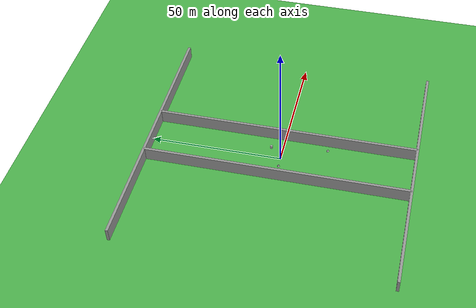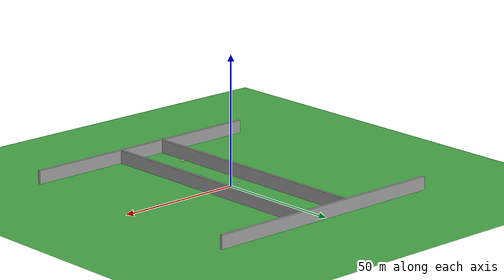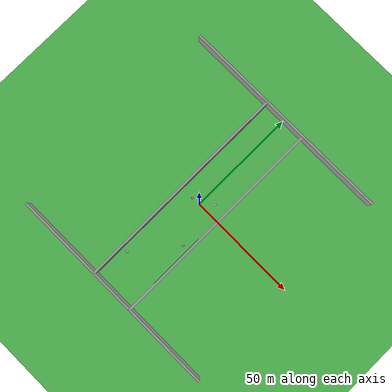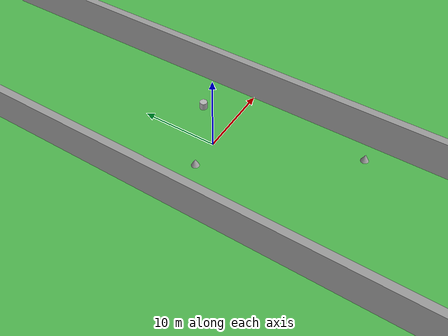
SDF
<sdf version="1.10">
 <world name="empty">
  <physics name="1ms" type="ignored">
   <max_step_size>0.001</max_step_size>
   <real_time_factor>1</real_time_factor>
   <real_time_update_rate>1000</real_time_update_rate>
  </physics>
  <plugin name="gz::sim::systems::Physics" filename="gz-sim-physics-system"/>
  <plugin name="gz::sim::systems::UserCommands" filename="gz-sim-user-commands-system"/>
  <plugin name="gz::sim::systems::SceneBroadcaster" filename="gz-sim-scene-broadcaster-system"/>
  <plugin name="gz::sim::systems::Contact" filename="gz-sim-contact-system"/>
  <plugin name="gz::sim::systems::Sensors" filename="gz-sim-sensors-system">
   <render_engine>ogre2</render_engine>
  </plugin>
  <gravity>0 0 -9.8000000000000007</gravity>
  <magnetic_field>5.5644999999999998e-06 2.2875799999999999e-05 -4.2388400000000002e-05</magnetic_field>
  <atmosphere type="adiabatic"/>
  <scene>
   <ambient>0.400000006 0.400000006 0.400000006 1</ambient>
   <background>0.699999988 0.699999988 0.699999988 1</background>
   <shadows>true</shadows>
  </scene>
  <model name="ground_plane">
   <static>true</static>
   <link name="link">
    <collision name="collision">
     <geometry><plane><normal>0 0 1</normal><size>100 100</size></plane></geometry>
    </collision>
    <visual name="visual">
     <geometry><plane><normal>0 0 1</normal><size>100 100</size></plane></geometry>
     <material>
      <ambient>0.200000003 0.5 0.200000003 1</ambient>
      <diffuse>0.300000012 0.699999988 0.300000012 1</diffuse>
      <specular>0.100000001 0.200000003 0.100000001 1</specular>
     </material>
    </visual>
    <inertial>
     <mass>1</mass>
     <inertia><ixx>1</ixx><ixy>0</ixy><ixz>0</ixz><iyy>1</iyy><iyz>0</iyz><izz>1</izz></inertia>
    </inertial>
   </link>
  </model>
  <model name="north_wall">
   <static>true</static>
   <link name="link">
    <collision name="collision"><geometry><box><size>100 1 8</size></box></geometry></collision>
    <visual name="visual">
     <geometry><box><size>100 1 8</size></box></geometry>
     <material>
      <ambient>0.600000024 0.600000024 0.600000024 1</ambient>
      <diffuse>0.600000024 0.600000024 0.600000024 1</diffuse>
     </material>
    </visual>
    <inertial>
     <mass>1</mass>
     <inertia><ixx>1</ixx><ixy>0</ixy><ixz>0</ixz><iyy>1</iyy><iyz>0</iyz><izz>1</izz></inertia>
    </inertial>
   </link>
   <pose>0 50 1 0 0 0</pose>
  </model>
  <model name="south_wall">
   <static>true</static>
   <link name="link">
    <collision name="collision"><geometry><box><size>100 1 8</size></box></geometry></collision>
    <visual name="visual">
     <geometry><box><size>100 1 8</size></box></geometry>
     <material>
      <ambient>0.600000024 0.600000024 0.600000024 1</ambient>
      <diffuse>0.600000024 0.600000024 0.600000024 1</diffuse>
     </material>
    </visual>
    <inertial>
     <mass>1</mass>
     <inertia><ixx>1</ixx><ixy>0</ixy><ixz>0</ixz><iyy>1</iyy><iyz>0</iyz><izz>1</izz></inertia>
    </inertial>
   </link>
   <pose>0 -50 1 0 0 0</pose>
  </model>
  <model name="east_wall">
   <static>true</static>
   <link name="link">
    <collision name="collision"><geometry><box><size>1 100 8</size></box></geometry></collision>
    <visual name="visual">
     <geometry><box><size>1 100 8</size></box></geometry>
     <material>
      <ambient>0.600000024 0.600000024 0.600000024 1</ambient>
      <diffuse>0.600000024 0.600000024 0.600000024 1</diffuse>
     </material>
    </visual>
    <inertial>
     <mass>1</mass>
     <inertia><ixx>1</ixx><ixy>0</ixy><ixz>0</ixz><iyy>1</iyy><iyz>0</iyz><izz>1</izz></inertia>
    </inertial>
   </link>
   <pose>10.560626029968262 0 1 0 0 0</pose>
  </model>
  <model name="west_wall">
   <static>true</static>
   <link name="link">
    <collision name="collision"><geometry><box><size>1 100 8</size></box></geometry></collision>
    <visual name="visual">
     <geometry><box><size>1 100 8</size></box></geometry>
     <material>
      <ambient>0.600000024 0.600000024 0.600000024 1</ambient>
      <diffuse>0.600000024 0.600000024 0.600000024 1</diffuse>
     </material>
    </visual>
    <inertial>
     <mass>1</mass>
     <inertia><ixx>1</ixx><ixy>0</ixy><ixz>0</ixz><iyy>1</iyy><iyz>0</iyz><izz>1</izz></inertia>
    </inertial>
   </link>
   <pose>-10.047396659851074 0 1 0 0 0</pose>
  </model>
  <model name="cylinder">
   <pose>4.891591573101489 4.5621575394666714 0.49999942638036005 2.5550699908049808e-19 -2.2824476174025148e-19 1.3530341368986673e-20</pose>
   <link name="cylinder_link">
    <inertial>
     <inertia>
      <ixx>0.14580000000000001</ixx>
      <ixy>0</ixy>
      <ixz>0</ixz>
      <iyy>0.14580000000000001</iyy>
      <iyz>0</iyz>
      <izz>0.125</izz>
     </inertia>
     <mass>1</mass>
    </inertial>
    <collision name="cylinder_collision">
     <geometry><cylinder><radius>0.5</radius><length>1</length></cylinder></geometry>
    </collision>
    <visual name="cylinder_visual">
     <geometry><cylinder><radius>0.5</radius><length>1</length></cylinder></geometry>
     <material>
      <ambient>0.300000012 0.300000012 0.300000012 1</ambient>
      <diffuse>0.699999988 0.699999988 0.699999988 1</diffuse>
      <specular>1 1 1 1</specular>
     </material>
    </visual>
   </link>
   <static>false</static>
  </model>
  <model name="cone">
   <pose>-3.9665346202055169 -0.10561042626538011 0.49999999993296756 5.254112337112289e-17 -7.7132841035481852e-10 1.1756787404075212e-22</pose>
   <link name="cone_link">
    <inertial>
     <inertia>
      <ixx>0.074999999999999997</ixx>
      <ixy>0</ixy>
      <ixz>0</ixz>
      <iyy>0.074999999999999997</iyy>
      <iyz>0</iyz>
      <izz>0.074999999999999997</izz>
     </inertia>
     <mass>1</mass>
    </inertial>
    <collision name="cone_collision">
     <geometry><cone><radius>0.5</radius><length>1</length></cone></geometry>
    </collision>
    <visual name="cone_visual">
     <geometry><cone><radius>0.5</radius><length>1</length></cone></geometry>
     <material>
      <ambient>0.300000012 0.300000012 0.300000012 1</ambient>
      <diffuse>0.699999988 0.699999988 0.699999988 1</diffuse>
      <specular>1 1 1 1</specular>
     </material>
    </visual>
   </link>
   <static>false</static>
  </model>
  <model name="cone_0">
   <pose>7.5367679143880064 -16.730582516696874 0.49999999993296756 5.2548544155140844e-17 -7.7132841038066057e-10 -1.848369177196814e-23</pose>
   <link name="cone_link">
    <inertial>
     <inertia>
      <ixx>0.074999999999999997</ixx>
      <ixy>0</ixy>
      <ixz>0</ixz>
      <iyy>0.074999999999999997</iyy>
      <iyz>0</iyz>
      <izz>0.074999999999999997</izz>
     </inertia>
     <mass>1</mass>
    </inertial>
    <collision name="cone_collision">
     <geometry><cone><radius>0.5</radius><length>1</length></cone></geometry>
    </collision>
    <visual name="cone_visual">
     <geometry><cone><radius>0.5</radius><length>1</length></cone></geometry>
     <material>
      <ambient>0.300000012 0.300000012 0.300000012 1</ambient>
      <diffuse>0.699999988 0.699999988 0.699999988 1</diffuse>
      <specular>1 1 1 1</specular>
     </material>
    </visual>
   </link>
   <static>false</static>
  </model>
  <model name="sphere">
   <pose>-7.2217340469360352 -35.097099304199219 0.499999999902001 0 0 0</pose>
   <link name="sphere_link">
    <inertial>
     <inertia>
      <ixx>0.10000000000000001</ixx>
      <ixy>0</ixy>
      <ixz>0</ixz>
      <iyy>0.10000000000000001</iyy>
      <iyz>0</iyz>
      <izz>0.10000000000000001</izz>
     </inertia>
     <mass>1</mass>
    </inertial>
    <collision name="sphere_collision"><geometry><sphere><radius>0.5</radius></sphere></geometry></collision>
    <visual name="sphere_visual">
     <geometry><sphere><radius>0.5</radius></sphere></geometry>
     <material>
      <ambient>0.300000012 0.300000012 0.300000012 1</ambient>
      <diffuse>0.699999988 0.699999988 0.699999988 1</diffuse>
      <specular>1 1 1 1</specular>
     </material>
    </visual>
   </link>
   <static>false</static>
  </model>
  <light name="sun" type="directional">
   <pose>0 0 10 0 0 0</pose>
   <intensity>1</intensity>
   <direction>-0.5 0.10000000000000001 -0.90000000000000002</direction>
   <diffuse>0.800000012 0.800000012 0.800000012 1</diffuse>
   <specular>0.200000003 0.200000003 0.200000003 1</specular>
   <attenuation>
    <range>1000</range>
    <linear>0.01</linear>
    <constant>0.90000000000000002</constant>
    <quadratic>0.001</quadratic>
   </attenuation>
   <spot><inner_angle>0</inner_angle><outer_angle>0</outer_angle><falloff>0</falloff></spot>
  </light>
 </world>
</sdf>
